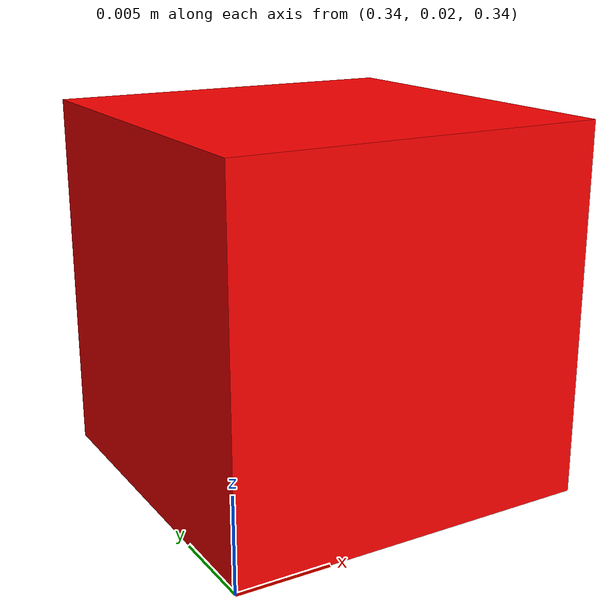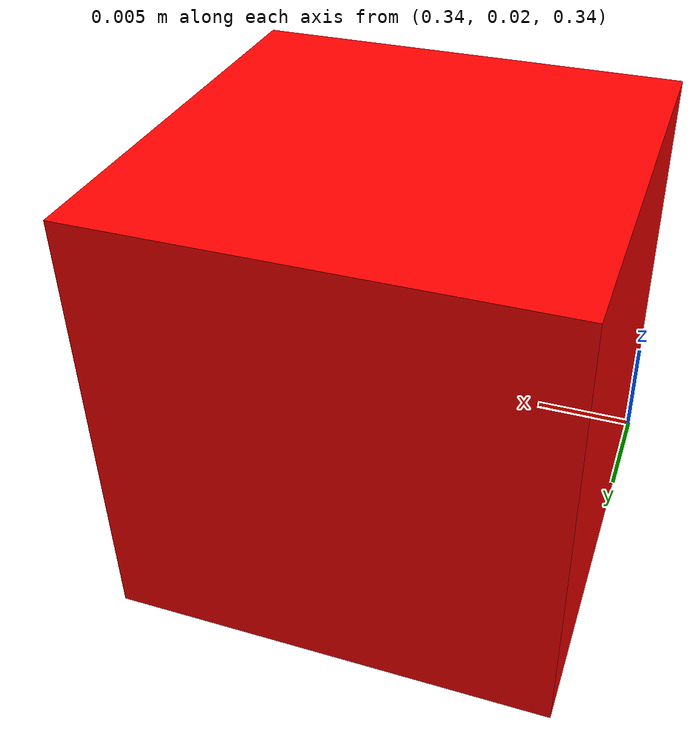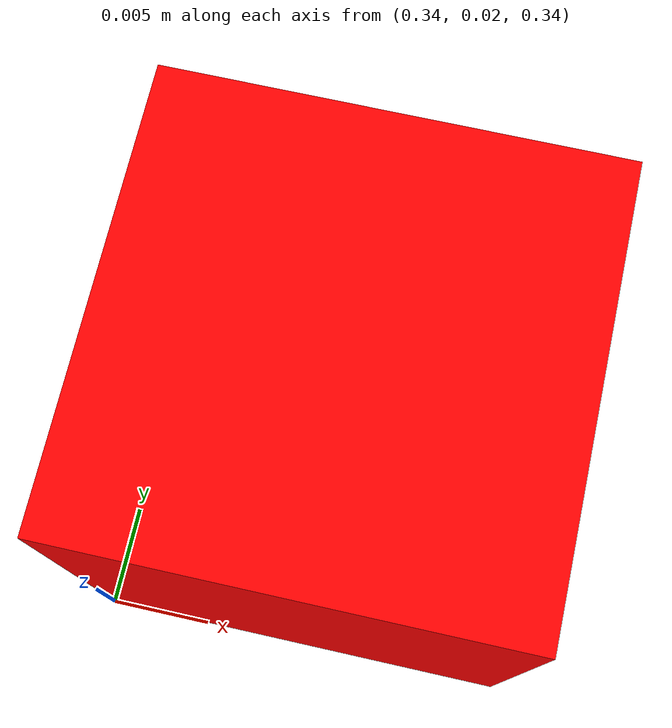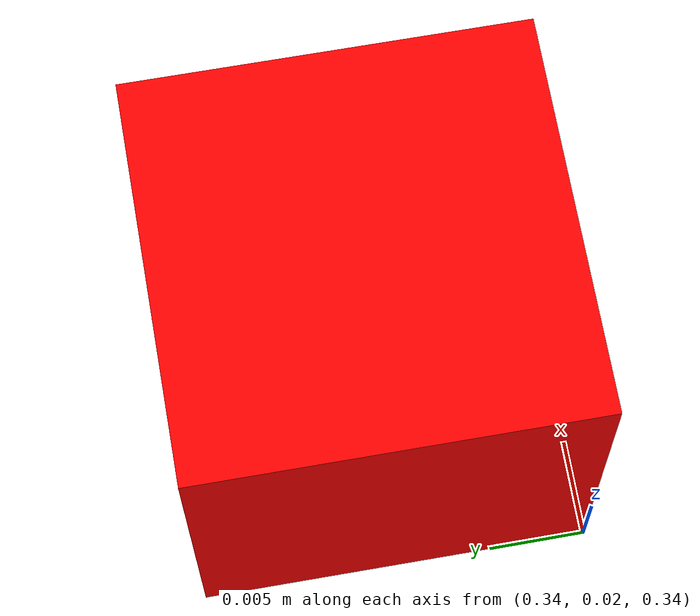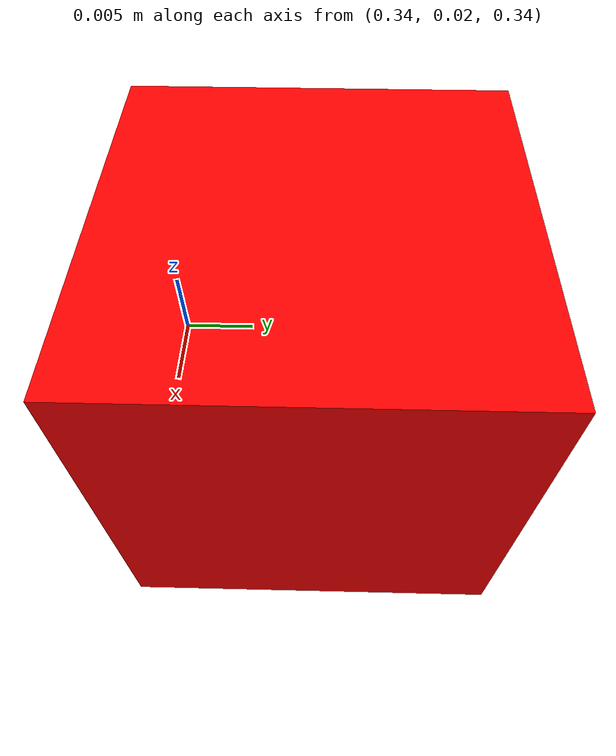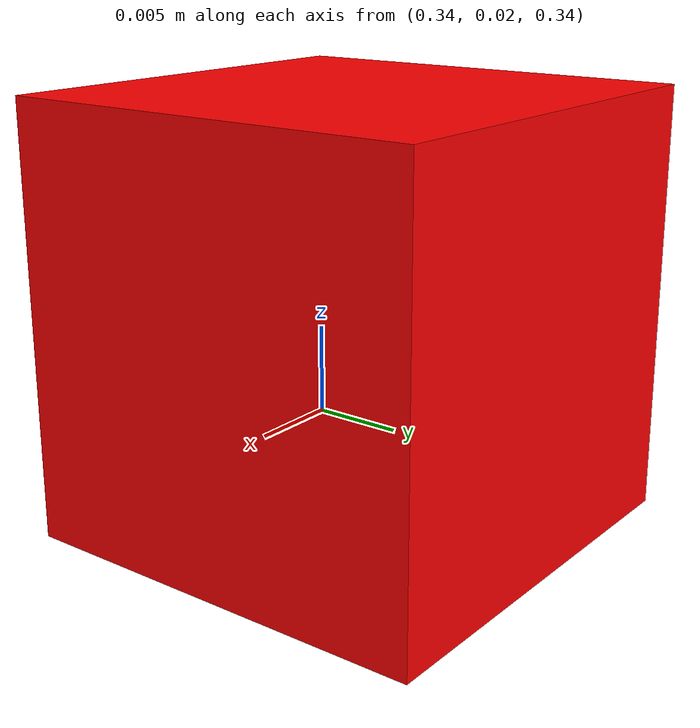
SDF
<?xml version="1.0" ?>
<sdf version="1.9">
  <world name="so101_world">

    <plugin filename="gz-sim-physics-system" name="gz::sim::systems::Physics"/>
    <plugin filename="gz-sim-user-commands-system" name="gz::sim::systems::UserCommands"/>
    <plugin filename="gz-sim-scene-broadcaster-system" name="gz::sim::systems::SceneBroadcaster"/>

    <gravity>0 0 -9.81</gravity>

    <light type="directional" name="sun">
      <cast_shadows>true</cast_shadows>
      <pose>0 0 10 0 0 0</pose>
      <diffuse>0.8 0.8 0.8 1</diffuse>
      <specular>0.2 0.2 0.2 1</specular>
      <direction>-0.5 0.1 -0.9</direction>
    </light>

    <model name="ground_plane">
      <static>true</static>
      <link name="link">
        <collision name="collision">
          <geometry>
            <plane>
              <normal>0 0 1</normal>
              <size>5 5</size>
            </plane>
          </geometry>
        </collision>
        <visual name="visual">
          <geometry>
            <plane>
              <normal>0 0 1</normal>
              <size>5 5</size>
            </plane>
          </geometry>
          <material>
            <ambient>0.7 0.7 0.7 1</ambient>
            <diffuse>0.7 0.7 0.7 1</diffuse>
          </material>
        </visual>
      </link>
    </model>

    <model name="pick_cube">
      <static>true</static>
      <pose>0.35 0.03 0.350 0 0 0</pose>

      <link name="link">
        <inertial>
          <mass>0.01</mass>
          <inertia>
            <ixx>0.00002</ixx>
            <iyy>0.00002</iyy>
            <izz>0.00002</izz>
            <ixy>0</ixy>
            <ixz>0</ixz>
            <iyz>0</iyz>
          </inertia>
        </inertial>

        <collision name="collision">
          <geometry>
            <box>
              <size>0.001 0.001 0.001</size>
            </box>
          </geometry>
        </collision>

        <visual name="visual">
          <geometry>
            <box>
              <size>0.02 0.02 0.02</size>
            </box>
          </geometry>
          <material>
            <ambient>1 0 0 1</ambient>
            <diffuse>1 0 0 1</diffuse>
          </material>
        </visual>
      </link>
    </model>

    <plugin
      filename="gz-sim-sensors-system"
      name="gz::sim::systems::Sensors">
      <render_engine>ogre2</render_engine>
    </plugin>

</world>
</sdf>
